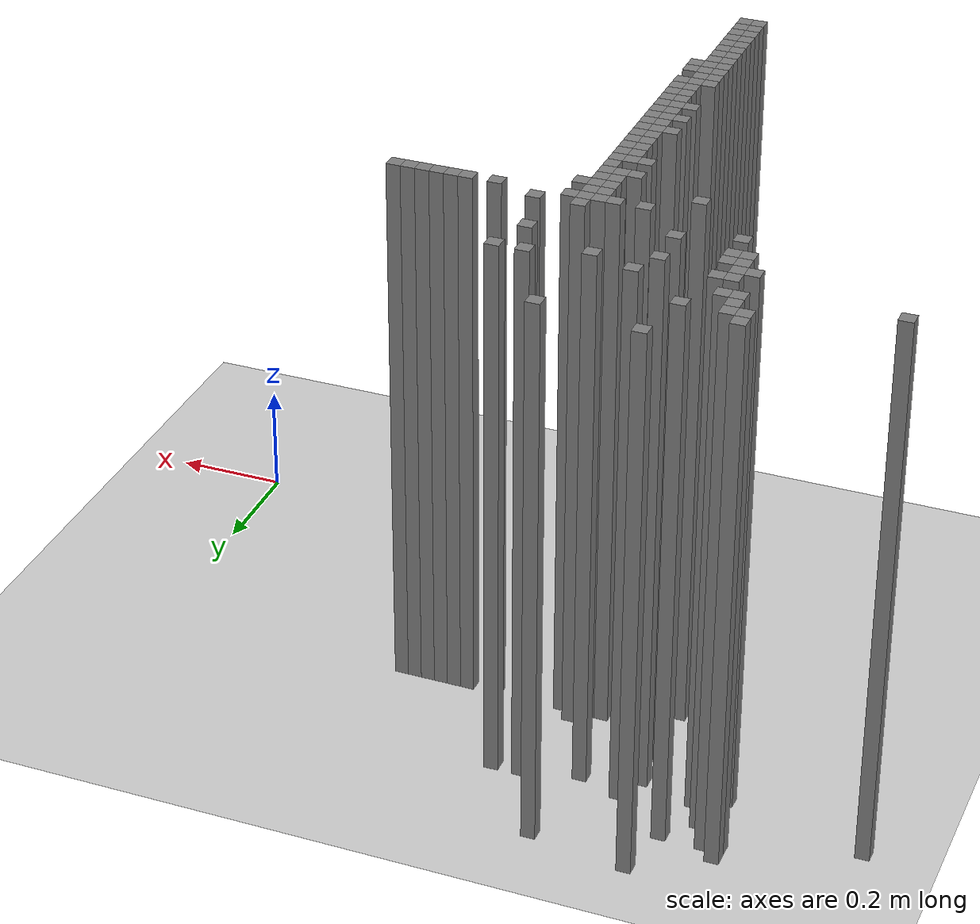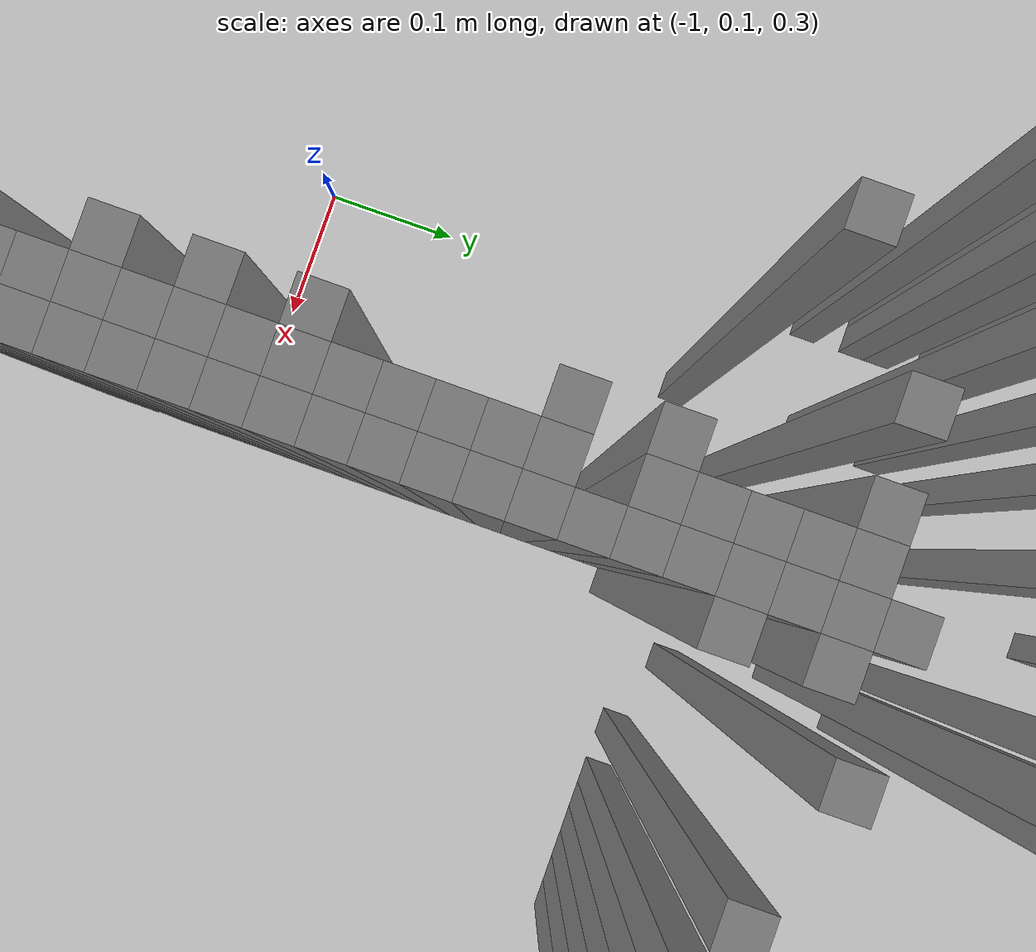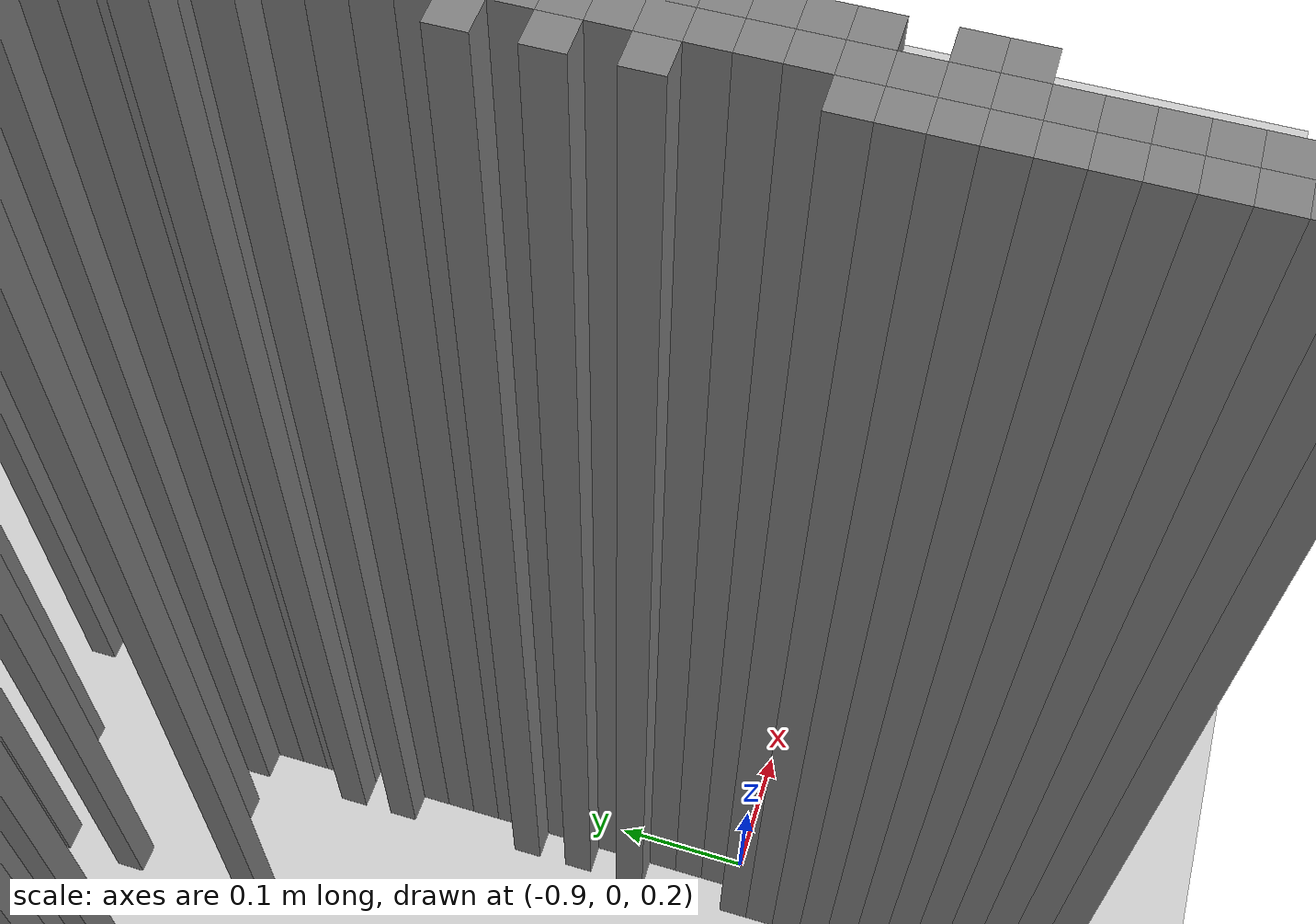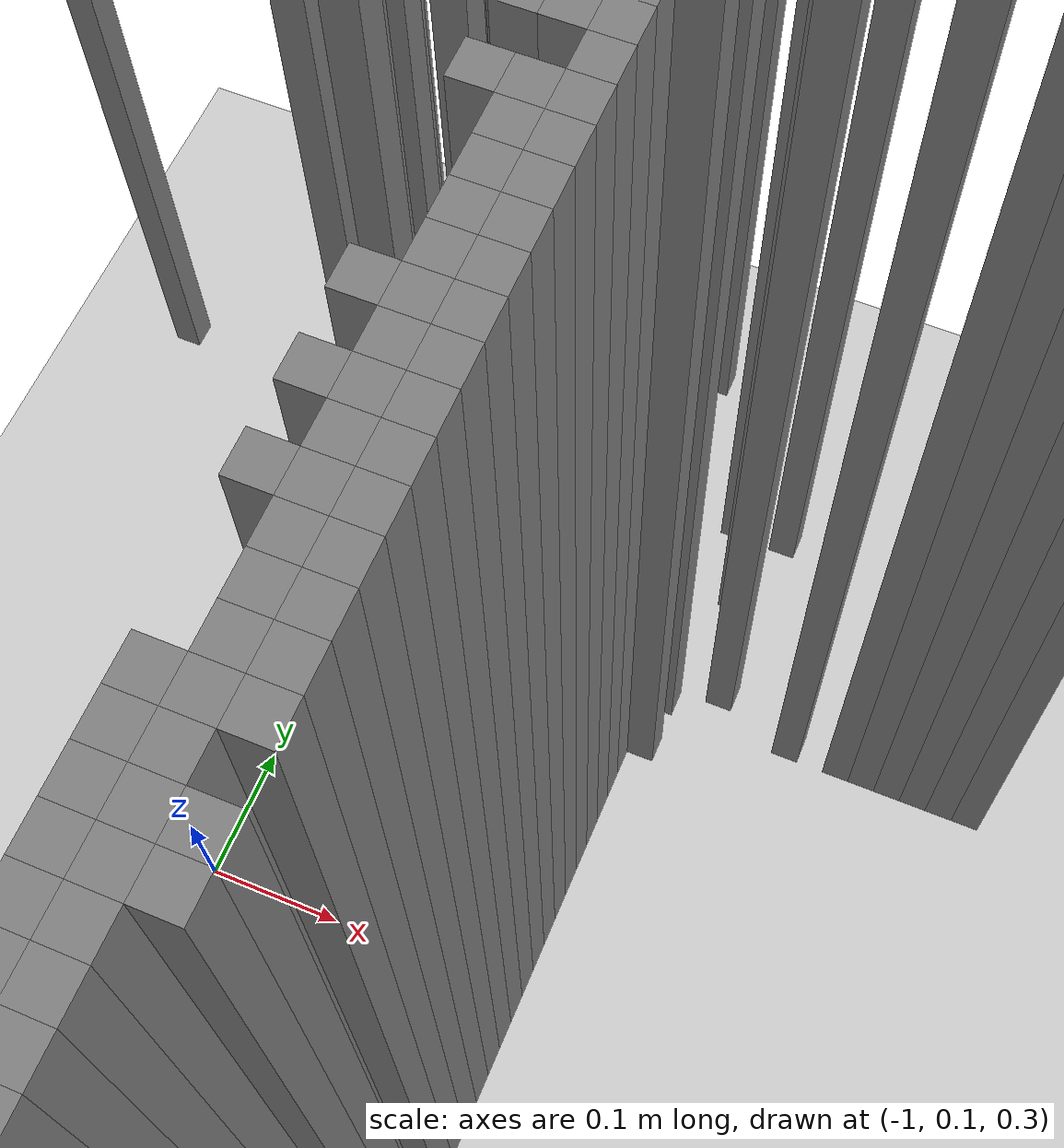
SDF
<sdf version="1.6">
 <world name="map_world">
  <include><uri>model://ground_plane</uri></include>
  <include><uri>model://sun</uri></include>
  <model name="obs_52_15">
   <static>true</static>
   <link name="link">
    <collision name="collision"><geometry><box><size>0.025 0.025 1.0</size></box></geometry></collision>
    <visual name="visual">
     <geometry><box><size>0.025 0.025 1.0</size></box></geometry>
     <material><ambient>0.5 0.5 0.5 1</ambient></material>
    </visual>
   </link>
   <pose>-1.026235 0.8559290000000002 0.5 0 0 0</pose>
  </model>
  <model name="obs_59_16">
   <static>true</static>
   <link name="link">
    <collision name="collision"><geometry><box><size>0.025 0.025 1.0</size></box></geometry></collision>
    <visual name="visual">
     <geometry><box><size>0.025 0.025 1.0</size></box></geometry>
     <material><ambient>0.5 0.5 0.5 1</ambient></material>
    </visual>
   </link>
   <pose>-0.851235 0.8309290000000003 0.5 0 0 0</pose>
  </model>
  <model name="obs_47_18">
   <static>true</static>
   <link name="link">
    <collision name="collision"><geometry><box><size>0.025 0.025 1.0</size></box></geometry></collision>
    <visual name="visual">
     <geometry><box><size>0.025 0.025 1.0</size></box></geometry>
     <material><ambient>0.5 0.5 0.5 1</ambient></material>
    </visual>
   </link>
   <pose>-1.151235 0.7809290000000004 0.5 0 0 0</pose>
  </model>
  <model name="obs_47_19">
   <static>true</static>
   <link name="link">
    <collision name="collision"><geometry><box><size>0.025 0.025 1.0</size></box></geometry></collision>
    <visual name="visual">
     <geometry><box><size>0.025 0.025 1.0</size></box></geometry>
     <material><ambient>0.5 0.5 0.5 1</ambient></material>
    </visual>
   </link>
   <pose>-1.151235 0.7559290000000001 0.5 0 0 0</pose>
  </model>
  <model name="obs_48_19">
   <static>true</static>
   <link name="link">
    <collision name="collision"><geometry><box><size>0.025 0.025 1.0</size></box></geometry></collision>
    <visual name="visual">
     <geometry><box><size>0.025 0.025 1.0</size></box></geometry>
     <material><ambient>0.5 0.5 0.5 1</ambient></material>
    </visual>
   </link>
   <pose>-1.1262349999999999 0.7559290000000001 0.5 0 0 0</pose>
  </model>
  <model name="obs_51_19">
   <static>true</static>
   <link name="link">
    <collision name="collision"><geometry><box><size>0.025 0.025 1.0</size></box></geometry></collision>
    <visual name="visual">
     <geometry><box><size>0.025 0.025 1.0</size></box></geometry>
     <material><ambient>0.5 0.5 0.5 1</ambient></material>
    </visual>
   </link>
   <pose>-1.051235 0.7559290000000001 0.5 0 0 0</pose>
  </model>
  <model name="obs_48_20">
   <static>true</static>
   <link name="link">
    <collision name="collision"><geometry><box><size>0.025 0.025 1.0</size></box></geometry></collision>
    <visual name="visual">
     <geometry><box><size>0.025 0.025 1.0</size></box></geometry>
     <material><ambient>0.5 0.5 0.5 1</ambient></material>
    </visual>
   </link>
   <pose>-1.1262349999999999 0.7309290000000002 0.5 0 0 0</pose>
  </model>
  <model name="obs_48_21">
   <static>true</static>
   <link name="link">
    <collision name="collision"><geometry><box><size>0.025 0.025 1.0</size></box></geometry></collision>
    <visual name="visual">
     <geometry><box><size>0.025 0.025 1.0</size></box></geometry>
     <material><ambient>0.5 0.5 0.5 1</ambient></material>
    </visual>
   </link>
   <pose>-1.1262349999999999 0.7059290000000003 0.5 0 0 0</pose>
  </model>
  <model name="obs_49_21">
   <static>true</static>
   <link name="link">
    <collision name="collision"><geometry><box><size>0.025 0.025 1.0</size></box></geometry></collision>
    <visual name="visual">
     <geometry><box><size>0.025 0.025 1.0</size></box></geometry>
     <material><ambient>0.5 0.5 0.5 1</ambient></material>
    </visual>
   </link>
   <pose>-1.101235 0.7059290000000003 0.5 0 0 0</pose>
  </model>
  <model name="obs_38_22">
   <static>true</static>
   <link name="link">
    <collision name="collision"><geometry><box><size>0.025 0.025 1.0</size></box></geometry></collision>
    <visual name="visual">
     <geometry><box><size>0.025 0.025 1.0</size></box></geometry>
     <material><ambient>0.5 0.5 0.5 1</ambient></material>
    </visual>
   </link>
   <pose>-1.3762349999999999 0.6809290000000003 0.5 0 0 0</pose>
  </model>
  <model name="obs_55_22">
   <static>true</static>
   <link name="link">
    <collision name="collision"><geometry><box><size>0.025 0.025 1.0</size></box></geometry></collision>
    <visual name="visual">
     <geometry><box><size>0.025 0.025 1.0</size></box></geometry>
     <material><ambient>0.5 0.5 0.5 1</ambient></material>
    </visual>
   </link>
   <pose>-0.951235 0.6809290000000003 0.5 0 0 0</pose>
  </model>
  <model name="obs_62_22">
   <static>true</static>
   <link name="link">
    <collision name="collision"><geometry><box><size>0.025 0.025 1.0</size></box></geometry></collision>
    <visual name="visual">
     <geometry><box><size>0.025 0.025 1.0</size></box></geometry>
     <material><ambient>0.5 0.5 0.5 1</ambient></material>
    </visual>
   </link>
   <pose>-0.776235 0.6809290000000003 0.5 0 0 0</pose>
  </model>
  <model name="obs_64_22">
   <static>true</static>
   <link name="link">
    <collision name="collision"><geometry><box><size>0.025 0.025 1.0</size></box></geometry></collision>
    <visual name="visual">
     <geometry><box><size>0.025 0.025 1.0</size></box></geometry>
     <material><ambient>0.5 0.5 0.5 1</ambient></material>
    </visual>
   </link>
   <pose>-0.726235 0.6809290000000003 0.5 0 0 0</pose>
  </model>
  <model name="obs_49_23">
   <static>true</static>
   <link name="link">
    <collision name="collision"><geometry><box><size>0.025 0.025 1.0</size></box></geometry></collision>
    <visual name="visual">
     <geometry><box><size>0.025 0.025 1.0</size></box></geometry>
     <material><ambient>0.5 0.5 0.5 1</ambient></material>
    </visual>
   </link>
   <pose>-1.101235 0.6559290000000004 0.5 0 0 0</pose>
  </model>
  <model name="obs_50_23">
   <static>true</static>
   <link name="link">
    <collision name="collision"><geometry><box><size>0.025 0.025 1.0</size></box></geometry></collision>
    <visual name="visual">
     <geometry><box><size>0.025 0.025 1.0</size></box></geometry>
     <material><ambient>0.5 0.5 0.5 1</ambient></material>
    </visual>
   </link>
   <pose>-1.076235 0.6559290000000004 0.5 0 0 0</pose>
  </model>
  <model name="obs_58_23">
   <static>true</static>
   <link name="link">
    <collision name="collision"><geometry><box><size>0.025 0.025 1.0</size></box></geometry></collision>
    <visual name="visual">
     <geometry><box><size>0.025 0.025 1.0</size></box></geometry>
     <material><ambient>0.5 0.5 0.5 1</ambient></material>
    </visual>
   </link>
   <pose>-0.8762349999999999 0.6559290000000004 0.5 0 0 0</pose>
  </model>
  <model name="obs_48_24">
   <static>true</static>
   <link name="link">
    <collision name="collision"><geometry><box><size>0.025 0.025 1.0</size></box></geometry></collision>
    <visual name="visual">
     <geometry><box><size>0.025 0.025 1.0</size></box></geometry>
     <material><ambient>0.5 0.5 0.5 1</ambient></material>
    </visual>
   </link>
   <pose>-1.1262349999999999 0.6309290000000001 0.5 0 0 0</pose>
  </model>
  <model name="obs_49_24">
   <static>true</static>
   <link name="link">
    <collision name="collision"><geometry><box><size>0.025 0.025 1.0</size></box></geometry></collision>
    <visual name="visual">
     <geometry><box><size>0.025 0.025 1.0</size></box></geometry>
     <material><ambient>0.5 0.5 0.5 1</ambient></material>
    </visual>
   </link>
   <pose>-1.101235 0.6309290000000001 0.5 0 0 0</pose>
  </model>
  <model name="obs_54_24">
   <static>true</static>
   <link name="link">
    <collision name="collision"><geometry><box><size>0.025 0.025 1.0</size></box></geometry></collision>
    <visual name="visual">
     <geometry><box><size>0.025 0.025 1.0</size></box></geometry>
     <material><ambient>0.5 0.5 0.5 1</ambient></material>
    </visual>
   </link>
   <pose>-0.976235 0.6309290000000001 0.5 0 0 0</pose>
  </model>
  <model name="obs_49_25">
   <static>true</static>
   <link name="link">
    <collision name="collision"><geometry><box><size>0.025 0.025 1.0</size></box></geometry></collision>
    <visual name="visual">
     <geometry><box><size>0.025 0.025 1.0</size></box></geometry>
     <material><ambient>0.5 0.5 0.5 1</ambient></material>
    </visual>
   </link>
   <pose>-1.101235 0.6059290000000002 0.5 0 0 0</pose>
  </model>
  <model name="obs_50_25">
   <static>true</static>
   <link name="link">
    <collision name="collision"><geometry><box><size>0.025 0.025 1.0</size></box></geometry></collision>
    <visual name="visual">
     <geometry><box><size>0.025 0.025 1.0</size></box></geometry>
     <material><ambient>0.5 0.5 0.5 1</ambient></material>
    </visual>
   </link>
   <pose>-1.076235 0.6059290000000002 0.5 0 0 0</pose>
  </model>
  <model name="obs_63_25">
   <static>true</static>
   <link name="link">
    <collision name="collision"><geometry><box><size>0.025 0.025 1.0</size></box></geometry></collision>
    <visual name="visual">
     <geometry><box><size>0.025 0.025 1.0</size></box></geometry>
     <material><ambient>0.5 0.5 0.5 1</ambient></material>
    </visual>
   </link>
   <pose>-0.7512349999999999 0.6059290000000002 0.5 0 0 0</pose>
  </model>
  <model name="obs_49_26">
   <static>true</static>
   <link name="link">
    <collision name="collision"><geometry><box><size>0.025 0.025 1.0</size></box></geometry></collision>
    <visual name="visual">
     <geometry><box><size>0.025 0.025 1.0</size></box></geometry>
     <material><ambient>0.5 0.5 0.5 1</ambient></material>
    </visual>
   </link>
   <pose>-1.101235 0.5809290000000003 0.5 0 0 0</pose>
  </model>
  <model name="obs_50_26">
   <static>true</static>
   <link name="link">
    <collision name="collision"><geometry><box><size>0.025 0.025 1.0</size></box></geometry></collision>
    <visual name="visual">
     <geometry><box><size>0.025 0.025 1.0</size></box></geometry>
     <material><ambient>0.5 0.5 0.5 1</ambient></material>
    </visual>
   </link>
   <pose>-1.076235 0.5809290000000003 0.5 0 0 0</pose>
  </model>
  <model name="obs_54_27">
   <static>true</static>
   <link name="link">
    <collision name="collision"><geometry><box><size>0.025 0.025 1.0</size></box></geometry></collision>
    <visual name="visual">
     <geometry><box><size>0.025 0.025 1.0</size></box></geometry>
     <material><ambient>0.5 0.5 0.5 1</ambient></material>
    </visual>
   </link>
   <pose>-0.976235 0.5559290000000003 0.5 0 0 0</pose>
  </model>
  <model name="obs_50_28">
   <static>true</static>
   <link name="link">
    <collision name="collision"><geometry><box><size>0.025 0.025 1.0</size></box></geometry></collision>
    <visual name="visual">
     <geometry><box><size>0.025 0.025 1.0</size></box></geometry>
     <material><ambient>0.5 0.5 0.5 1</ambient></material>
    </visual>
   </link>
   <pose>-1.076235 0.5309290000000004 0.5 0 0 0</pose>
  </model>
  <model name="obs_61_29">
   <static>true</static>
   <link name="link">
    <collision name="collision"><geometry><box><size>0.025 0.025 1.0</size></box></geometry></collision>
    <visual name="visual">
     <geometry><box><size>0.025 0.025 1.0</size></box></geometry>
     <material><ambient>0.5 0.5 0.5 1</ambient></material>
    </visual>
   </link>
   <pose>-0.8012349999999999 0.5059290000000001 0.5 0 0 0</pose>
  </model>
  <model name="obs_64_29">
   <static>true</static>
   <link name="link">
    <collision name="collision"><geometry><box><size>0.025 0.025 1.0</size></box></geometry></collision>
    <visual name="visual">
     <geometry><box><size>0.025 0.025 1.0</size></box></geometry>
     <material><ambient>0.5 0.5 0.5 1</ambient></material>
    </visual>
   </link>
   <pose>-0.726235 0.5059290000000001 0.5 0 0 0</pose>
  </model>
  <model name="obs_57_30">
   <static>true</static>
   <link name="link">
    <collision name="collision"><geometry><box><size>0.025 0.025 1.0</size></box></geometry></collision>
    <visual name="visual">
     <geometry><box><size>0.025 0.025 1.0</size></box></geometry>
     <material><ambient>0.5 0.5 0.5 1</ambient></material>
    </visual>
   </link>
   <pose>-0.901235 0.48092900000000016 0.5 0 0 0</pose>
  </model>
  <model name="obs_59_30">
   <static>true</static>
   <link name="link">
    <collision name="collision"><geometry><box><size>0.025 0.025 1.0</size></box></geometry></collision>
    <visual name="visual">
     <geometry><box><size>0.025 0.025 1.0</size></box></geometry>
     <material><ambient>0.5 0.5 0.5 1</ambient></material>
    </visual>
   </link>
   <pose>-0.851235 0.48092900000000016 0.5 0 0 0</pose>
  </model>
  <model name="obs_60_30">
   <static>true</static>
   <link name="link">
    <collision name="collision"><geometry><box><size>0.025 0.025 1.0</size></box></geometry></collision>
    <visual name="visual">
     <geometry><box><size>0.025 0.025 1.0</size></box></geometry>
     <material><ambient>0.5 0.5 0.5 1</ambient></material>
    </visual>
   </link>
   <pose>-0.826235 0.48092900000000016 0.5 0 0 0</pose>
  </model>
  <model name="obs_61_30">
   <static>true</static>
   <link name="link">
    <collision name="collision"><geometry><box><size>0.025 0.025 1.0</size></box></geometry></collision>
    <visual name="visual">
     <geometry><box><size>0.025 0.025 1.0</size></box></geometry>
     <material><ambient>0.5 0.5 0.5 1</ambient></material>
    </visual>
   </link>
   <pose>-0.8012349999999999 0.48092900000000016 0.5 0 0 0</pose>
  </model>
  <model name="obs_62_30">
   <static>true</static>
   <link name="link">
    <collision name="collision"><geometry><box><size>0.025 0.025 1.0</size></box></geometry></collision>
    <visual name="visual">
     <geometry><box><size>0.025 0.025 1.0</size></box></geometry>
     <material><ambient>0.5 0.5 0.5 1</ambient></material>
    </visual>
   </link>
   <pose>-0.776235 0.48092900000000016 0.5 0 0 0</pose>
  </model>
  <model name="obs_67_30">
   <static>true</static>
   <link name="link">
    <collision name="collision"><geometry><box><size>0.025 0.025 1.0</size></box></geometry></collision>
    <visual name="visual">
     <geometry><box><size>0.025 0.025 1.0</size></box></geometry>
     <material><ambient>0.5 0.5 0.5 1</ambient></material>
    </visual>
   </link>
   <pose>-0.651235 0.48092900000000016 0.5 0 0 0</pose>
  </model>
  <model name="obs_69_30">
   <static>true</static>
   <link name="link">
    <collision name="collision"><geometry><box><size>0.025 0.025 1.0</size></box></geometry></collision>
    <visual name="visual">
     <geometry><box><size>0.025 0.025 1.0</size></box></geometry>
     <material><ambient>0.5 0.5 0.5 1</ambient></material>
    </visual>
   </link>
   <pose>-0.601235 0.48092900000000016 0.5 0 0 0</pose>
  </model>
  <model name="obs_70_30">
   <static>true</static>
   <link name="link">
    <collision name="collision"><geometry><box><size>0.025 0.025 1.0</size></box></geometry></collision>
    <visual name="visual">
     <geometry><box><size>0.025 0.025 1.0</size></box></geometry>
     <material><ambient>0.5 0.5 0.5 1</ambient></material>
    </visual>
   </link>
   <pose>-0.576235 0.48092900000000016 0.5 0 0 0</pose>
  </model>
  <model name="obs_71_30">
   <static>true</static>
   <link name="link">
    <collision name="collision"><geometry><box><size>0.025 0.025 1.0</size></box></geometry></collision>
    <visual name="visual">
     <geometry><box><size>0.025 0.025 1.0</size></box></geometry>
     <material><ambient>0.5 0.5 0.5 1</ambient></material>
    </visual>
   </link>
   <pose>-0.5512349999999999 0.48092900000000016 0.5 0 0 0</pose>
  </model>
  <model name="obs_72_30">
   <static>true</static>
   <link name="link">
    <collision name="collision"><geometry><box><size>0.025 0.025 1.0</size></box></geometry></collision>
    <visual name="visual">
     <geometry><box><size>0.025 0.025 1.0</size></box></geometry>
     <material><ambient>0.5 0.5 0.5 1</ambient></material>
    </visual>
   </link>
   <pose>-0.526235 0.48092900000000016 0.5 0 0 0</pose>
  </model>
  <model name="obs_73_30">
   <static>true</static>
   <link name="link">
    <collision name="collision"><geometry><box><size>0.025 0.025 1.0</size></box></geometry></collision>
    <visual name="visual">
     <geometry><box><size>0.025 0.025 1.0</size></box></geometry>
     <material><ambient>0.5 0.5 0.5 1</ambient></material>
    </visual>
   </link>
   <pose>-0.5012349999999999 0.48092900000000016 0.5 0 0 0</pose>
  </model>
  <model name="obs_74_30">
   <static>true</static>
   <link name="link">
    <collision name="collision"><geometry><box><size>0.025 0.025 1.0</size></box></geometry></collision>
    <visual name="visual">
     <geometry><box><size>0.025 0.025 1.0</size></box></geometry>
     <material><ambient>0.5 0.5 0.5 1</ambient></material>
    </visual>
   </link>
   <pose>-0.47623499999999996 0.48092900000000016 0.5 0 0 0</pose>
  </model>
  <model name="obs_60_31">
   <static>true</static>
   <link name="link">
    <collision name="collision"><geometry><box><size>0.025 0.025 1.0</size></box></geometry></collision>
    <visual name="visual">
     <geometry><box><size>0.025 0.025 1.0</size></box></geometry>
     <material><ambient>0.5 0.5 0.5 1</ambient></material>
    </visual>
   </link>
   <pose>-0.826235 0.45592900000000025 0.5 0 0 0</pose>
  </model>
  <model name="obs_61_31">
   <static>true</static>
   <link name="link">
    <collision name="collision"><geometry><box><size>0.025 0.025 1.0</size></box></geometry></collision>
    <visual name="visual">
     <geometry><box><size>0.025 0.025 1.0</size></box></geometry>
     <material><ambient>0.5 0.5 0.5 1</ambient></material>
    </visual>
   </link>
   <pose>-0.8012349999999999 0.45592900000000025 0.5 0 0 0</pose>
  </model>
  <model name="obs_54_32">
   <static>true</static>
   <link name="link">
    <collision name="collision"><geometry><box><size>0.025 0.025 1.0</size></box></geometry></collision>
    <visual name="visual">
     <geometry><box><size>0.025 0.025 1.0</size></box></geometry>
     <material><ambient>0.5 0.5 0.5 1</ambient></material>
    </visual>
   </link>
   <pose>-0.976235 0.43092900000000034 0.5 0 0 0</pose>
  </model>
  <model name="obs_60_32">
   <static>true</static>
   <link name="link">
    <collision name="collision"><geometry><box><size>0.025 0.025 1.0</size></box></geometry></collision>
    <visual name="visual">
     <geometry><box><size>0.025 0.025 1.0</size></box></geometry>
     <material><ambient>0.5 0.5 0.5 1</ambient></material>
    </visual>
   </link>
   <pose>-0.826235 0.43092900000000034 0.5 0 0 0</pose>
  </model>
  <model name="obs_61_32">
   <static>true</static>
   <link name="link">
    <collision name="collision"><geometry><box><size>0.025 0.025 1.0</size></box></geometry></collision>
    <visual name="visual">
     <geometry><box><size>0.025 0.025 1.0</size></box></geometry>
     <material><ambient>0.5 0.5 0.5 1</ambient></material>
    </visual>
   </link>
   <pose>-0.8012349999999999 0.43092900000000034 0.5 0 0 0</pose>
  </model>
  <model name="obs_62_32">
   <static>true</static>
   <link name="link">
    <collision name="collision"><geometry><box><size>0.025 0.025 1.0</size></box></geometry></collision>
    <visual name="visual">
     <geometry><box><size>0.025 0.025 1.0</size></box></geometry>
     <material><ambient>0.5 0.5 0.5 1</ambient></material>
    </visual>
   </link>
   <pose>-0.776235 0.43092900000000034 0.5 0 0 0</pose>
  </model>
  <model name="obs_60_33">
   <static>true</static>
   <link name="link">
    <collision name="collision"><geometry><box><size>0.025 0.025 1.0</size></box></geometry></collision>
    <visual name="visual">
     <geometry><box><size>0.025 0.025 1.0</size></box></geometry>
     <material><ambient>0.5 0.5 0.5 1</ambient></material>
    </visual>
   </link>
   <pose>-0.826235 0.40592900000000043 0.5 0 0 0</pose>
  </model>
  <model name="obs_61_33">
   <static>true</static>
   <link name="link">
    <collision name="collision"><geometry><box><size>0.025 0.025 1.0</size></box></geometry></collision>
    <visual name="visual">
     <geometry><box><size>0.025 0.025 1.0</size></box></geometry>
     <material><ambient>0.5 0.5 0.5 1</ambient></material>
    </visual>
   </link>
   <pose>-0.8012349999999999 0.40592900000000043 0.5 0 0 0</pose>
  </model>
  <model name="obs_59_34">
   <static>true</static>
   <link name="link">
    <collision name="collision"><geometry><box><size>0.025 0.025 1.0</size></box></geometry></collision>
    <visual name="visual">
     <geometry><box><size>0.025 0.025 1.0</size></box></geometry>
     <material><ambient>0.5 0.5 0.5 1</ambient></material>
    </visual>
   </link>
   <pose>-0.851235 0.3809290000000001 0.5 0 0 0</pose>
  </model>
  <model name="obs_60_34">
   <static>true</static>
   <link name="link">
    <collision name="collision"><geometry><box><size>0.025 0.025 1.0</size></box></geometry></collision>
    <visual name="visual">
     <geometry><box><size>0.025 0.025 1.0</size></box></geometry>
     <material><ambient>0.5 0.5 0.5 1</ambient></material>
    </visual>
   </link>
   <pose>-0.826235 0.3809290000000001 0.5 0 0 0</pose>
  </model>
  <model name="obs_61_34">
   <static>true</static>
   <link name="link">
    <collision name="collision"><geometry><box><size>0.025 0.025 1.0</size></box></geometry></collision>
    <visual name="visual">
     <geometry><box><size>0.025 0.025 1.0</size></box></geometry>
     <material><ambient>0.5 0.5 0.5 1</ambient></material>
    </visual>
   </link>
   <pose>-0.8012349999999999 0.3809290000000001 0.5 0 0 0</pose>
  </model>
  <model name="obs_61_35">
   <static>true</static>
   <link name="link">
    <collision name="collision"><geometry><box><size>0.025 0.025 1.0</size></box></geometry></collision>
    <visual name="visual">
     <geometry><box><size>0.025 0.025 1.0</size></box></geometry>
     <material><ambient>0.5 0.5 0.5 1</ambient></material>
    </visual>
   </link>
   <pose>-0.8012349999999999 0.35592900000000016 0.5 0 0 0</pose>
  </model>
  <model name="obs_59_36">
   <static>true</static>
   <link name="link">
    <collision name="collision"><geometry><box><size>0.025 0.025 1.0</size></box></geometry></collision>
    <visual name="visual">
     <geometry><box><size>0.025 0.025 1.0</size></box></geometry>
     <material><ambient>0.5 0.5 0.5 1</ambient></material>
    </visual>
   </link>
   <pose>-0.851235 0.33092900000000025 0.5 0 0 0</pose>
  </model>
  <model name="obs_60_36">
   <static>true</static>
   <link name="link">
    <collision name="collision"><geometry><box><size>0.025 0.025 1.0</size></box></geometry></collision>
    <visual name="visual">
     <geometry><box><size>0.025 0.025 1.0</size></box></geometry>
     <material><ambient>0.5 0.5 0.5 1</ambient></material>
    </visual>
   </link>
   <pose>-0.826235 0.33092900000000025 0.5 0 0 0</pose>
  </model>
  <model name="obs_61_36">
   <static>true</static>
   <link name="link">
    <collision name="collision"><geometry><box><size>0.025 0.025 1.0</size></box></geometry></collision>
    <visual name="visual">
     <geometry><box><size>0.025 0.025 1.0</size></box></geometry>
     <material><ambient>0.5 0.5 0.5 1</ambient></material>
    </visual>
   </link>
   <pose>-0.8012349999999999 0.33092900000000025 0.5 0 0 0</pose>
  </model>
  <model name="obs_60_37">
   <static>true</static>
   <link name="link">
    <collision name="collision"><geometry><box><size>0.025 0.025 1.0</size></box></geometry></collision>
    <visual name="visual">
     <geometry><box><size>0.025 0.025 1.0</size></box></geometry>
     <material><ambient>0.5 0.5 0.5 1</ambient></material>
    </visual>
   </link>
   <pose>-0.826235 0.30592900000000034 0.5 0 0 0</pose>
  </model>
  <model name="obs_61_37">
   <static>true</static>
   <link name="link">
    <collision name="collision"><geometry><box><size>0.025 0.025 1.0</size></box></geometry></collision>
    <visual name="visual">
     <geometry><box><size>0.025 0.025 1.0</size></box></geometry>
     <material><ambient>0.5 0.5 0.5 1</ambient></material>
    </visual>
   </link>
   <pose>-0.8012349999999999 0.30592900000000034 0.5 0 0 0</pose>
  </model>
  <model name="obs_60_38">
   <static>true</static>
   <link name="link">
    <collision name="collision"><geometry><box><size>0.025 0.025 1.0</size></box></geometry></collision>
    <visual name="visual">
     <geometry><box><size>0.025 0.025 1.0</size></box></geometry>
     <material><ambient>0.5 0.5 0.5 1</ambient></material>
    </visual>
   </link>
   <pose>-0.826235 0.280929 0.5 0 0 0</pose>
  </model>
  <model name="obs_61_38">
   <static>true</static>
   <link name="link">
    <collision name="collision"><geometry><box><size>0.025 0.025 1.0</size></box></geometry></collision>
    <visual name="visual">
     <geometry><box><size>0.025 0.025 1.0</size></box></geometry>
     <material><ambient>0.5 0.5 0.5 1</ambient></material>
    </visual>
   </link>
   <pose>-0.8012349999999999 0.280929 0.5 0 0 0</pose>
  </model>
  <model name="obs_60_39">
   <static>true</static>
   <link name="link">
    <collision name="collision"><geometry><box><size>0.025 0.025 1.0</size></box></geometry></collision>
    <visual name="visual">
     <geometry><box><size>0.025 0.025 1.0</size></box></geometry>
     <material><ambient>0.5 0.5 0.5 1</ambient></material>
    </visual>
   </link>
   <pose>-0.826235 0.2559290000000001 0.5 0 0 0</pose>
  </model>
  <model name="obs_61_39">
   <static>true</static>
   <link name="link">
    <collision name="collision"><geometry><box><size>0.025 0.025 1.0</size></box></geometry></collision>
    <visual name="visual">
     <geometry><box><size>0.025 0.025 1.0</size></box></geometry>
     <material><ambient>0.5 0.5 0.5 1</ambient></material>
    </visual>
   </link>
   <pose>-0.8012349999999999 0.2559290000000001 0.5 0 0 0</pose>
  </model>
  <model name="obs_60_40">
   <static>true</static>
   <link name="link">
    <collision name="collision"><geometry><box><size>0.025 0.025 1.0</size></box></geometry></collision>
    <visual name="visual">
     <geometry><box><size>0.025 0.025 1.0</size></box></geometry>
     <material><ambient>0.5 0.5 0.5 1</ambient></material>
    </visual>
   </link>
   <pose>-0.826235 0.23092900000000016 0.5 0 0 0</pose>
  </model>
  <model name="obs_61_40">
   <static>true</static>
   <link name="link">
    <collision name="collision"><geometry><box><size>0.025 0.025 1.0</size></box></geometry></collision>
    <visual name="visual">
     <geometry><box><size>0.025 0.025 1.0</size></box></geometry>
     <material><ambient>0.5 0.5 0.5 1</ambient></material>
    </visual>
   </link>
   <pose>-0.8012349999999999 0.23092900000000016 0.5 0 0 0</pose>
  </model>
  <model name="obs_59_41">
   <static>true</static>
   <link name="link">
    <collision name="collision"><geometry><box><size>0.025 0.025 1.0</size></box></geometry></collision>
    <visual name="visual">
     <geometry><box><size>0.025 0.025 1.0</size></box></geometry>
     <material><ambient>0.5 0.5 0.5 1</ambient></material>
    </visual>
   </link>
   <pose>-0.851235 0.20592900000000025 0.5 0 0 0</pose>
  </model>
  <model name="obs_60_41">
   <static>true</static>
   <link name="link">
    <collision name="collision"><geometry><box><size>0.025 0.025 1.0</size></box></geometry></collision>
    <visual name="visual">
     <geometry><box><size>0.025 0.025 1.0</size></box></geometry>
     <material><ambient>0.5 0.5 0.5 1</ambient></material>
    </visual>
   </link>
   <pose>-0.826235 0.20592900000000025 0.5 0 0 0</pose>
  </model>
  <model name="obs_61_41">
   <static>true</static>
   <link name="link">
    <collision name="collision"><geometry><box><size>0.025 0.025 1.0</size></box></geometry></collision>
    <visual name="visual">
     <geometry><box><size>0.025 0.025 1.0</size></box></geometry>
     <material><ambient>0.5 0.5 0.5 1</ambient></material>
    </visual>
   </link>
   <pose>-0.8012349999999999 0.20592900000000025 0.5 0 0 0</pose>
  </model>
  <model name="obs_60_42">
   <static>true</static>
   <link name="link">
    <collision name="collision"><geometry><box><size>0.025 0.025 1.0</size></box></geometry></collision>
    <visual name="visual">
     <geometry><box><size>0.025 0.025 1.0</size></box></geometry>
     <material><ambient>0.5 0.5 0.5 1</ambient></material>
    </visual>
   </link>
   <pose>-0.826235 0.18092900000000034 0.5 0 0 0</pose>
  </model>
  <model name="obs_61_42">
   <static>true</static>
   <link name="link">
    <collision name="collision"><geometry><box><size>0.025 0.025 1.0</size></box></geometry></collision>
    <visual name="visual">
     <geometry><box><size>0.025 0.025 1.0</size></box></geometry>
     <material><ambient>0.5 0.5 0.5 1</ambient></material>
    </visual>
   </link>
   <pose>-0.8012349999999999 0.18092900000000034 0.5 0 0 0</pose>
  </model>
  <model name="obs_59_43">
   <static>true</static>
   <link name="link">
    <collision name="collision"><geometry><box><size>0.025 0.025 1.0</size></box></geometry></collision>
    <visual name="visual">
     <geometry><box><size>0.025 0.025 1.0</size></box></geometry>
     <material><ambient>0.5 0.5 0.5 1</ambient></material>
    </visual>
   </link>
   <pose>-0.851235 0.15592899999999998 0.5 0 0 0</pose>
  </model>
  <model name="obs_60_43">
   <static>true</static>
   <link name="link">
    <collision name="collision"><geometry><box><size>0.025 0.025 1.0</size></box></geometry></collision>
    <visual name="visual">
     <geometry><box><size>0.025 0.025 1.0</size></box></geometry>
     <material><ambient>0.5 0.5 0.5 1</ambient></material>
    </visual>
   </link>
   <pose>-0.826235 0.15592899999999998 0.5 0 0 0</pose>
  </model>
  <model name="obs_61_43">
   <static>true</static>
   <link name="link">
    <collision name="collision"><geometry><box><size>0.025 0.025 1.0</size></box></geometry></collision>
    <visual name="visual">
     <geometry><box><size>0.025 0.025 1.0</size></box></geometry>
     <material><ambient>0.5 0.5 0.5 1</ambient></material>
    </visual>
   </link>
   <pose>-0.8012349999999999 0.15592899999999998 0.5 0 0 0</pose>
  </model>
  <model name="obs_60_44">
   <static>true</static>
   <link name="link">
    <collision name="collision"><geometry><box><size>0.025 0.025 1.0</size></box></geometry></collision>
    <visual name="visual">
     <geometry><box><size>0.025 0.025 1.0</size></box></geometry>
     <material><ambient>0.5 0.5 0.5 1</ambient></material>
    </visual>
   </link>
   <pose>-0.826235 0.13092900000000007 0.5 0 0 0</pose>
  </model>
  <model name="obs_61_44">
   <static>true</static>
   <link name="link">
    <collision name="collision"><geometry><box><size>0.025 0.025 1.0</size></box></geometry></collision>
    <visual name="visual">
     <geometry><box><size>0.025 0.025 1.0</size></box></geometry>
     <material><ambient>0.5 0.5 0.5 1</ambient></material>
    </visual>
   </link>
   <pose>-0.8012349999999999 0.13092900000000007 0.5 0 0 0</pose>
  </model>
  <model name="obs_59_45">
   <static>true</static>
   <link name="link">
    <collision name="collision"><geometry><box><size>0.025 0.025 1.0</size></box></geometry></collision>
    <visual name="visual">
     <geometry><box><size>0.025 0.025 1.0</size></box></geometry>
     <material><ambient>0.5 0.5 0.5 1</ambient></material>
    </visual>
   </link>
   <pose>-0.851235 0.10592900000000016 0.5 0 0 0</pose>
  </model>
  <model name="obs_60_45">
   <static>true</static>
   <link name="link">
    <collision name="collision"><geometry><box><size>0.025 0.025 1.0</size></box></geometry></collision>
    <visual name="visual">
     <geometry><box><size>0.025 0.025 1.0</size></box></geometry>
     <material><ambient>0.5 0.5 0.5 1</ambient></material>
    </visual>
   </link>
   <pose>-0.826235 0.10592900000000016 0.5 0 0 0</pose>
  </model>
  <model name="obs_61_45">
   <static>true</static>
   <link name="link">
    <collision name="collision"><geometry><box><size>0.025 0.025 1.0</size></box></geometry></collision>
    <visual name="visual">
     <geometry><box><size>0.025 0.025 1.0</size></box></geometry>
     <material><ambient>0.5 0.5 0.5 1</ambient></material>
    </visual>
   </link>
   <pose>-0.8012349999999999 0.10592900000000016 0.5 0 0 0</pose>
  </model>
  <model name="obs_60_46">
   <static>true</static>
   <link name="link">
    <collision name="collision"><geometry><box><size>0.025 0.025 1.0</size></box></geometry></collision>
    <visual name="visual">
     <geometry><box><size>0.025 0.025 1.0</size></box></geometry>
     <material><ambient>0.5 0.5 0.5 1</ambient></material>
    </visual>
   </link>
   <pose>-0.826235 0.08092900000000025 0.5 0 0 0</pose>
  </model>
  <model name="obs_61_46">
   <static>true</static>
   <link name="link">
    <collision name="collision"><geometry><box><size>0.025 0.025 1.0</size></box></geometry></collision>
    <visual name="visual">
     <geometry><box><size>0.025 0.025 1.0</size></box></geometry>
     <material><ambient>0.5 0.5 0.5 1</ambient></material>
    </visual>
   </link>
   <pose>-0.8012349999999999 0.08092900000000025 0.5 0 0 0</pose>
  </model>
  <model name="obs_60_47">
   <static>true</static>
   <link name="link">
    <collision name="collision"><geometry><box><size>0.025 0.025 1.0</size></box></geometry></collision>
    <visual name="visual">
     <geometry><box><size>0.025 0.025 1.0</size></box></geometry>
     <material><ambient>0.5 0.5 0.5 1</ambient></material>
    </visual>
   </link>
   <pose>-0.826235 0.05592900000000034 0.5 0 0 0</pose>
  </model>
  <model name="obs_61_47">
   <static>true</static>
   <link name="link">
    <collision name="collision"><geometry><box><size>0.025 0.025 1.0</size></box></geometry></collision>
    <visual name="visual">
     <geometry><box><size>0.025 0.025 1.0</size></box></geometry>
     <material><ambient>0.5 0.5 0.5 1</ambient></material>
    </visual>
   </link>
   <pose>-0.8012349999999999 0.05592900000000034 0.5 0 0 0</pose>
  </model>
  <model name="obs_60_48">
   <static>true</static>
   <link name="link">
    <collision name="collision"><geometry><box><size>0.025 0.025 1.0</size></box></geometry></collision>
    <visual name="visual">
     <geometry><box><size>0.025 0.025 1.0</size></box></geometry>
     <material><ambient>0.5 0.5 0.5 1</ambient></material>
    </visual>
   </link>
   <pose>-0.826235 0.030928999999999984 0.5 0 0 0</pose>
  </model>
  <model name="obs_61_48">
   <static>true</static>
   <link name="link">
    <collision name="collision"><geometry><box><size>0.025 0.025 1.0</size></box></geometry></collision>
    <visual name="visual">
     <geometry><box><size>0.025 0.025 1.0</size></box></geometry>
     <material><ambient>0.5 0.5 0.5 1</ambient></material>
    </visual>
   </link>
   <pose>-0.8012349999999999 0.030928999999999984 0.5 0 0 0</pose>
  </model>
  <model name="obs_59_49">
   <static>true</static>
   <link name="link">
    <collision name="collision"><geometry><box><size>0.025 0.025 1.0</size></box></geometry></collision>
    <visual name="visual">
     <geometry><box><size>0.025 0.025 1.0</size></box></geometry>
     <material><ambient>0.5 0.5 0.5 1</ambient></material>
    </visual>
   </link>
   <pose>-0.851235 0.005929000000000073 0.5 0 0 0</pose>
  </model>
  <model name="obs_60_49">
   <static>true</static>
   <link name="link">
    <collision name="collision"><geometry><box><size>0.025 0.025 1.0</size></box></geometry></collision>
    <visual name="visual">
     <geometry><box><size>0.025 0.025 1.0</size></box></geometry>
     <material><ambient>0.5 0.5 0.5 1</ambient></material>
    </visual>
   </link>
   <pose>-0.826235 0.005929000000000073 0.5 0 0 0</pose>
  </model>
  <model name="obs_61_49">
   <static>true</static>
   <link name="link">
    <collision name="collision"><geometry><box><size>0.025 0.025 1.0</size></box></geometry></collision>
    <visual name="visual">
     <geometry><box><size>0.025 0.025 1.0</size></box></geometry>
     <material><ambient>0.5 0.5 0.5 1</ambient></material>
    </visual>
   </link>
   <pose>-0.8012349999999999 0.005929000000000073 0.5 0 0 0</pose>
  </model>
  <model name="obs_59_50">
   <static>true</static>
   <link name="link">
    <collision name="collision"><geometry><box><size>0.025 0.025 1.0</size></box></geometry></collision>
    <visual name="visual">
     <geometry><box><size>0.025 0.025 1.0</size></box></geometry>
     <material><ambient>0.5 0.5 0.5 1</ambient></material>
    </visual>
   </link>
   <pose>-0.851235 -0.019070999999999838 0.5 0 0 0</pose>
  </model>
  <model name="obs_60_50">
   <static>true</static>
   <link name="link">
    <collision name="collision"><geometry><box><size>0.025 0.025 1.0</size></box></geometry></collision>
    <visual name="visual">
     <geometry><box><size>0.025 0.025 1.0</size></box></geometry>
     <material><ambient>0.5 0.5 0.5 1</ambient></material>
    </visual>
   </link>
   <pose>-0.826235 -0.019070999999999838 0.5 0 0 0</pose>
  </model>
  <model name="obs_59_51">
   <static>true</static>
   <link name="link">
    <collision name="collision"><geometry><box><size>0.025 0.025 1.0</size></box></geometry></collision>
    <visual name="visual">
     <geometry><box><size>0.025 0.025 1.0</size></box></geometry>
     <material><ambient>0.5 0.5 0.5 1</ambient></material>
    </visual>
   </link>
   <pose>-0.851235 -0.04407099999999975 0.5 0 0 0</pose>
  </model>
  <model name="obs_60_51">
   <static>true</static>
   <link name="link">
    <collision name="collision"><geometry><box><size>0.025 0.025 1.0</size></box></geometry></collision>
    <visual name="visual">
     <geometry><box><size>0.025 0.025 1.0</size></box></geometry>
     <material><ambient>0.5 0.5 0.5 1</ambient></material>
    </visual>
   </link>
   <pose>-0.826235 -0.04407099999999975 0.5 0 0 0</pose>
  </model>
  <model name="obs_61_51">
   <static>true</static>
   <link name="link">
    <collision name="collision"><geometry><box><size>0.025 0.025 1.0</size></box></geometry></collision>
    <visual name="visual">
     <geometry><box><size>0.025 0.025 1.0</size></box></geometry>
     <material><ambient>0.5 0.5 0.5 1</ambient></material>
    </visual>
   </link>
   <pose>-0.8012349999999999 -0.04407099999999975 0.5 0 0 0</pose>
  </model>
  <model name="obs_59_52">
   <static>true</static>
   <link name="link">
    <collision name="collision"><geometry><box><size>0.025 0.025 1.0</size></box></geometry></collision>
    <visual name="visual">
     <geometry><box><size>0.025 0.025 1.0</size></box></geometry>
     <material><ambient>0.5 0.5 0.5 1</ambient></material>
    </visual>
   </link>
   <pose>-0.851235 -0.06907099999999988 0.5 0 0 0</pose>
  </model>
  <model name="obs_60_52">
   <static>true</static>
   <link name="link">
    <collision name="collision"><geometry><box><size>0.025 0.025 1.0</size></box></geometry></collision>
    <visual name="visual">
     <geometry><box><size>0.025 0.025 1.0</size></box></geometry>
     <material><ambient>0.5 0.5 0.5 1</ambient></material>
    </visual>
   </link>
   <pose>-0.826235 -0.06907099999999988 0.5 0 0 0</pose>
  </model>
  <model name="obs_61_52">
   <static>true</static>
   <link name="link">
    <collision name="collision"><geometry><box><size>0.025 0.025 1.0</size></box></geometry></collision>
    <visual name="visual">
     <geometry><box><size>0.025 0.025 1.0</size></box></geometry>
     <material><ambient>0.5 0.5 0.5 1</ambient></material>
    </visual>
   </link>
   <pose>-0.8012349999999999 -0.06907099999999988 0.5 0 0 0</pose>
  </model>
  <model name="obs_59_53">
   <static>true</static>
   <link name="link">
    <collision name="collision"><geometry><box><size>0.025 0.025 1.0</size></box></geometry></collision>
    <visual name="visual">
     <geometry><box><size>0.025 0.025 1.0</size></box></geometry>
     <material><ambient>0.5 0.5 0.5 1</ambient></material>
    </visual>
   </link>
   <pose>-0.851235 -0.0940709999999998 0.5 0 0 0</pose>
  </model>
  <model name="obs_60_53">
   <static>true</static>
   <link name="link">
    <collision name="collision"><geometry><box><size>0.025 0.025 1.0</size></box></geometry></collision>
    <visual name="visual">
     <geometry><box><size>0.025 0.025 1.0</size></box></geometry>
     <material><ambient>0.5 0.5 0.5 1</ambient></material>
    </visual>
   </link>
   <pose>-0.826235 -0.0940709999999998 0.5 0 0 0</pose>
  </model>
  <model name="obs_59_54">
   <static>true</static>
   <link name="link">
    <collision name="collision"><geometry><box><size>0.025 0.025 1.0</size></box></geometry></collision>
    <visual name="visual">
     <geometry><box><size>0.025 0.025 1.0</size></box></geometry>
     <material><ambient>0.5 0.5 0.5 1</ambient></material>
    </visual>
   </link>
   <pose>-0.851235 -0.11907099999999993 0.5 0 0 0</pose>
  </model>
  <model name="obs_60_54">
   <static>true</static>
   <link name="link">
    <collision name="collision"><geometry><box><size>0.025 0.025 1.0</size></box></geometry></collision>
    <visual name="visual">
     <geometry><box><size>0.025 0.025 1.0</size></box></geometry>
     <material><ambient>0.5 0.5 0.5 1</ambient></material>
    </visual>
   </link>
   <pose>-0.826235 -0.11907099999999993 0.5 0 0 0</pose>
  </model>
  <model name="obs_59_55">
   <static>true</static>
   <link name="link">
    <collision name="collision"><geometry><box><size>0.025 0.025 1.0</size></box></geometry></collision>
    <visual name="visual">
     <geometry><box><size>0.025 0.025 1.0</size></box></geometry>
     <material><ambient>0.5 0.5 0.5 1</ambient></material>
    </visual>
   </link>
   <pose>-0.851235 -0.14407099999999984 0.5 0 0 0</pose>
  </model>
  <model name="obs_60_55">
   <static>true</static>
   <link name="link">
    <collision name="collision"><geometry><box><size>0.025 0.025 1.0</size></box></geometry></collision>
    <visual name="visual">
     <geometry><box><size>0.025 0.025 1.0</size></box></geometry>
     <material><ambient>0.5 0.5 0.5 1</ambient></material>
    </visual>
   </link>
   <pose>-0.826235 -0.14407099999999984 0.5 0 0 0</pose>
  </model>
  <model name="obs_59_56">
   <static>true</static>
   <link name="link">
    <collision name="collision"><geometry><box><size>0.025 0.025 1.0</size></box></geometry></collision>
    <visual name="visual">
     <geometry><box><size>0.025 0.025 1.0</size></box></geometry>
     <material><ambient>0.5 0.5 0.5 1</ambient></material>
    </visual>
   </link>
   <pose>-0.851235 -0.16907099999999975 0.5 0 0 0</pose>
  </model>
  <model name="obs_60_56">
   <static>true</static>
   <link name="link">
    <collision name="collision"><geometry><box><size>0.025 0.025 1.0</size></box></geometry></collision>
    <visual name="visual">
     <geometry><box><size>0.025 0.025 1.0</size></box></geometry>
     <material><ambient>0.5 0.5 0.5 1</ambient></material>
    </visual>
   </link>
   <pose>-0.826235 -0.16907099999999975 0.5 0 0 0</pose>
  </model>
  <model name="obs_59_57">
   <static>true</static>
   <link name="link">
    <collision name="collision"><geometry><box><size>0.025 0.025 1.0</size></box></geometry></collision>
    <visual name="visual">
     <geometry><box><size>0.025 0.025 1.0</size></box></geometry>
     <material><ambient>0.5 0.5 0.5 1</ambient></material>
    </visual>
   </link>
   <pose>-0.851235 -0.19407099999999988 0.5 0 0 0</pose>
  </model>
  <model name="obs_60_57">
   <static>true</static>
   <link name="link">
    <collision name="collision"><geometry><box><size>0.025 0.025 1.0</size></box></geometry></collision>
    <visual name="visual">
     <geometry><box><size>0.025 0.025 1.0</size></box></geometry>
     <material><ambient>0.5 0.5 0.5 1</ambient></material>
    </visual>
   </link>
   <pose>-0.826235 -0.19407099999999988 0.5 0 0 0</pose>
  </model>
  <model name="obs_59_58">
   <static>true</static>
   <link name="link">
    <collision name="collision"><geometry><box><size>0.025 0.025 1.0</size></box></geometry></collision>
    <visual name="visual">
     <geometry><box><size>0.025 0.025 1.0</size></box></geometry>
     <material><ambient>0.5 0.5 0.5 1</ambient></material>
    </visual>
   </link>
   <pose>-0.851235 -0.2190709999999998 0.5 0 0 0</pose>
  </model>
  <model name="obs_60_58">
   <static>true</static>
   <link name="link">
    <collision name="collision"><geometry><box><size>0.025 0.025 1.0</size></box></geometry></collision>
    <visual name="visual">
     <geometry><box><size>0.025 0.025 1.0</size></box></geometry>
     <material><ambient>0.5 0.5 0.5 1</ambient></material>
    </visual>
   </link>
   <pose>-0.826235 -0.2190709999999998 0.5 0 0 0</pose>
  </model>
  <model name="obs_59_59">
   <static>true</static>
   <link name="link">
    <collision name="collision"><geometry><box><size>0.025 0.025 1.0</size></box></geometry></collision>
    <visual name="visual">
     <geometry><box><size>0.025 0.025 1.0</size></box></geometry>
     <material><ambient>0.5 0.5 0.5 1</ambient></material>
    </visual>
   </link>
   <pose>-0.851235 -0.24407099999999993 0.5 0 0 0</pose>
  </model>
  <model name="obs_60_59">
   <static>true</static>
   <link name="link">
    <collision name="collision"><geometry><box><size>0.025 0.025 1.0</size></box></geometry></collision>
    <visual name="visual">
     <geometry><box><size>0.025 0.025 1.0</size></box></geometry>
     <material><ambient>0.5 0.5 0.5 1</ambient></material>
    </visual>
   </link>
   <pose>-0.826235 -0.24407099999999993 0.5 0 0 0</pose>
  </model>
  <model name="obs_59_60">
   <static>true</static>
   <link name="link">
    <collision name="collision"><geometry><box><size>0.025 0.025 1.0</size></box></geometry></collision>
    <visual name="visual">
     <geometry><box><size>0.025 0.025 1.0</size></box></geometry>
     <material><ambient>0.5 0.5 0.5 1</ambient></material>
    </visual>
   </link>
   <pose>-0.851235 -0.26907099999999984 0.5 0 0 0</pose>
  </model>
  <model name="obs_60_60">
   <static>true</static>
   <link name="link">
    <collision name="collision"><geometry><box><size>0.025 0.025 1.0</size></box></geometry></collision>
    <visual name="visual">
     <geometry><box><size>0.025 0.025 1.0</size></box></geometry>
     <material><ambient>0.5 0.5 0.5 1</ambient></material>
    </visual>
   </link>
   <pose>-0.826235 -0.26907099999999984 0.5 0 0 0</pose>
  </model>
 </world>
</sdf>
